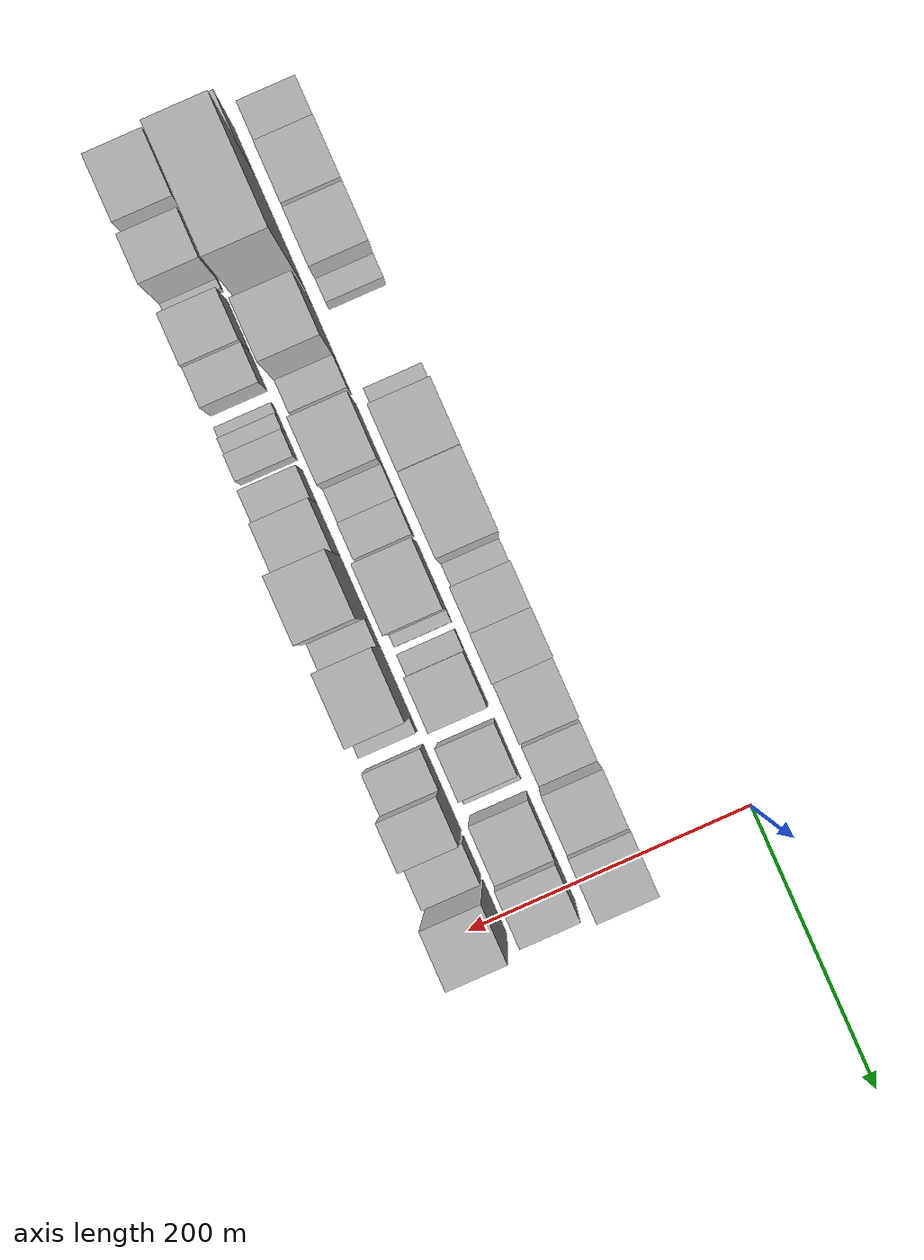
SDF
<sdf version="1.6">
 <world name="default">
  <model name="building_1">
   <static>1</static>
   <pose>100.0000 -520.7160 0 0.000000 0.000000 0.000000</pose>
   <link name="link">
    <pose>0 0 28.50 0 0 0</pose>
    <collision name="collision"><geometry><box><size>40.0000 30.5679 57.0000</size></box></geometry></collision>
    <visual name="visual">
     <cast_shadows>0</cast_shadows>
     <geometry><box><size>40.0000 30.5679 57.0000</size></box></geometry>
     <material>
      <script>
       <uri>model://HANNAS_wall/materials/scripts</uri>
       <uri>model://HANNAS_wall/materials/textures</uri>
       <name>vrc/HANNAS_wall</name>
      </script>
     </material>
    </visual>
   </link>
  </model>
  <model name="building_2">
   <static>1</static>
   <pose>100.0000 -484.4016 0 0.000000 0.000000 0.000000</pose>
   <link name="link">
    <pose>0 0 36.00 0 0 0</pose>
    <collision name="collision"><geometry><box><size>40.0000 42.0609 72.0000</size></box></geometry></collision>
    <visual name="visual">
     <cast_shadows>0</cast_shadows>
     <geometry><box><size>40.0000 42.0609 72.0000</size></box></geometry>
     <material>
      <script>
       <uri>model://HANNAS_wall/materials/scripts</uri>
       <uri>model://HANNAS_wall/materials/textures</uri>
       <name>vrc/HANNAS_wall</name>
      </script>
     </material>
    </visual>
   </link>
  </model>
  <model name="building_3">
   <static>1</static>
   <pose>100.0000 -440.3986 0 0.000000 0.000000 0.000000</pose>
   <link name="link">
    <pose>0 0 37.50 0 0 0</pose>
    <collision name="collision"><geometry><box><size>40.0000 39.9451 75.0000</size></box></geometry></collision>
    <visual name="visual">
     <cast_shadows>0</cast_shadows>
     <geometry><box><size>40.0000 39.9451 75.0000</size></box></geometry>
     <material>
      <script>
       <uri>model://HANNAS_wall/materials/scripts</uri>
       <uri>model://HANNAS_wall/materials/textures</uri>
       <name>vrc/HANNAS_wall</name>
      </script>
     </material>
    </visual>
   </link>
  </model>
  <model name="building_4">
   <static>1</static>
   <pose>100.0000 -412.2053 0 0.000000 0.000000 0.000000</pose>
   <link name="link">
    <pose>0 0 15.00 0 0 0</pose>
    <collision name="collision"><geometry><box><size>40.0000 16.4415 30.0000</size></box></geometry></collision>
    <visual name="visual">
     <cast_shadows>0</cast_shadows>
     <geometry><box><size>40.0000 16.4415 30.0000</size></box></geometry>
     <material>
      <script>
       <uri>model://HANNAS_wall/materials/scripts</uri>
       <uri>model://HANNAS_wall/materials/textures</uri>
       <name>vrc/HANNAS_wall</name>
      </script>
     </material>
    </visual>
   </link>
  </model>
  <model name="building_5">
   <static>1</static>
   <pose>100.0000 -332.3766 0 0.000000 0.000000 0.000000</pose>
   <link name="link">
    <pose>0 0 19.50 0 0 0</pose>
    <collision name="collision"><geometry><box><size>40.0000 22.4053 39.0000</size></box></geometry></collision>
    <visual name="visual">
     <cast_shadows>0</cast_shadows>
     <geometry><box><size>40.0000 22.4053 39.0000</size></box></geometry>
     <material>
      <script>
       <uri>model://HANNAS_wall/materials/scripts</uri>
       <uri>model://HANNAS_wall/materials/textures</uri>
       <name>vrc/HANNAS_wall</name>
      </script>
     </material>
    </visual>
   </link>
  </model>
  <model name="building_6">
   <static>1</static>
   <pose>100.0000 -299.6409 0 0.000000 0.000000 0.000000</pose>
   <link name="link">
    <pose>0 0 70.50 0 0 0</pose>
    <collision name="collision"><geometry><box><size>40.0000 43.0661 141.0000</size></box></geometry></collision>
    <visual name="visual">
     <cast_shadows>0</cast_shadows>
     <geometry><box><size>40.0000 43.0661 141.0000</size></box></geometry>
     <material>
      <script>
       <uri>model://HANNAS_wall/materials/scripts</uri>
       <uri>model://HANNAS_wall/materials/textures</uri>
       <name>vrc/HANNAS_wall</name>
      </script>
     </material>
    </visual>
   </link>
  </model>
  <model name="building_7">
   <static>1</static>
   <pose>100.0000 -250.5822 0 0.000000 0.000000 0.000000</pose>
   <link name="link">
    <pose>0 0 69.00 0 0 0</pose>
    <collision name="collision"><geometry><box><size>40.0000 55.0513 138.0000</size></box></geometry></collision>
    <visual name="visual">
     <cast_shadows>0</cast_shadows>
     <geometry><box><size>40.0000 55.0513 138.0000</size></box></geometry>
     <material>
      <script>
       <uri>model://HANNAS_wall/materials/scripts</uri>
       <uri>model://HANNAS_wall/materials/textures</uri>
       <name>vrc/HANNAS_wall</name>
      </script>
     </material>
    </visual>
   </link>
  </model>
  <model name="building_8">
   <static>1</static>
   <pose>100.0000 -214.4647 0 0.000000 0.000000 0.000000</pose>
   <link name="link">
    <pose>0 0 16.50 0 0 0</pose>
    <collision name="collision"><geometry><box><size>40.0000 17.1836 33.0000</size></box></geometry></collision>
    <visual name="visual">
     <cast_shadows>0</cast_shadows>
     <geometry><box><size>40.0000 17.1836 33.0000</size></box></geometry>
     <material>
      <script>
       <uri>model://HANNAS_wall/materials/scripts</uri>
       <uri>model://HANNAS_wall/materials/textures</uri>
       <name>vrc/HANNAS_wall</name>
      </script>
     </material>
    </visual>
   </link>
  </model>
  <model name="building_9">
   <static>1</static>
   <pose>100.0000 -190.5602 0 0.000000 0.000000 0.000000</pose>
   <link name="link">
    <pose>0 0 48.00 0 0 0</pose>
    <collision name="collision"><geometry><box><size>40.0000 30.6254 96.0000</size></box></geometry></collision>
    <visual name="visual">
     <cast_shadows>0</cast_shadows>
     <geometry><box><size>40.0000 30.6254 96.0000</size></box></geometry>
     <material>
      <script>
       <uri>model://HANNAS_wall/materials/scripts</uri>
       <uri>model://HANNAS_wall/materials/textures</uri>
       <name>vrc/HANNAS_wall</name>
      </script>
     </material>
    </visual>
   </link>
  </model>
  <model name="building_10">
   <static>1</static>
   <pose>100.0000 -158.8489 0 0.000000 0.000000 0.000000</pose>
   <link name="link">
    <pose>0 0 54.00 0 0 0</pose>
    <collision name="collision"><geometry><box><size>40.0000 32.7972 108.0000</size></box></geometry></collision>
    <visual name="visual">
     <cast_shadows>0</cast_shadows>
     <geometry><box><size>40.0000 32.7972 108.0000</size></box></geometry>
     <material>
      <script>
       <uri>model://HANNAS_wall/materials/scripts</uri>
       <uri>model://HANNAS_wall/materials/textures</uri>
       <name>vrc/HANNAS_wall</name>
      </script>
     </material>
    </visual>
   </link>
  </model>
  <model name="building_11">
   <static>1</static>
   <pose>100.0000 -121.7645 0 0.000000 0.000000 0.000000</pose>
   <link name="link">
    <pose>0 0 37.50 0 0 0</pose>
    <collision name="collision"><geometry><box><size>40.0000 41.3716 75.0000</size></box></geometry></collision>
    <visual name="visual">
     <cast_shadows>0</cast_shadows>
     <geometry><box><size>40.0000 41.3716 75.0000</size></box></geometry>
     <material>
      <script>
       <uri>model://HANNAS_wall/materials/scripts</uri>
       <uri>model://HANNAS_wall/materials/textures</uri>
       <name>vrc/HANNAS_wall</name>
      </script>
     </material>
    </visual>
   </link>
  </model>
  <model name="building_12">
   <static>1</static>
   <pose>100.0000 -83.7302 0 0.000000 0.000000 0.000000</pose>
   <link name="link">
    <pose>0 0 22.50 0 0 0</pose>
    <collision name="collision"><geometry><box><size>40.0000 26.6971 45.0000</size></box></geometry></collision>
    <visual name="visual">
     <cast_shadows>0</cast_shadows>
     <geometry><box><size>40.0000 26.6971 45.0000</size></box></geometry>
     <material>
      <script>
       <uri>model://HANNAS_wall/materials/scripts</uri>
       <uri>model://HANNAS_wall/materials/textures</uri>
       <name>vrc/HANNAS_wall</name>
      </script>
     </material>
    </visual>
   </link>
  </model>
  <model name="building_13">
   <static>1</static>
   <pose>100.0000 -51.2228 0 0.000000 0.000000 0.000000</pose>
   <link name="link">
    <pose>0 0 58.50 0 0 0</pose>
    <collision name="collision"><geometry><box><size>40.0000 38.3178 117.0000</size></box></geometry></collision>
    <visual name="visual">
     <cast_shadows>0</cast_shadows>
     <geometry><box><size>40.0000 38.3178 117.0000</size></box></geometry>
     <material>
      <script>
       <uri>model://HANNAS_wall/materials/scripts</uri>
       <uri>model://HANNAS_wall/materials/textures</uri>
       <name>vrc/HANNAS_wall</name>
      </script>
     </material>
    </visual>
   </link>
  </model>
  <model name="building_14">
   <static>1</static>
   <pose>100.0000 -11.2822 0 0.000000 0.000000 0.000000</pose>
   <link name="link">
    <pose>0 0 67.50 0 0 0</pose>
    <collision name="collision"><geometry><box><size>40.0000 41.5633 135.0000</size></box></geometry></collision>
    <visual name="visual">
     <cast_shadows>0</cast_shadows>
     <geometry><box><size>40.0000 41.5633 135.0000</size></box></geometry>
     <material>
      <script>
       <uri>model://HANNAS_wall/materials/scripts</uri>
       <uri>model://HANNAS_wall/materials/textures</uri>
       <name>vrc/HANNAS_wall</name>
      </script>
     </material>
    </visual>
   </link>
  </model>
  <model name="building_31">
   <static>1</static>
   <pose>149.0000 -519.3381 0 0.000000 0.000000 0.000000</pose>
   <link name="link">
    <pose>0 0 49.50 0 0 0</pose>
    <collision name="collision"><geometry><box><size>40.0000 33.3238 99.0000</size></box></geometry></collision>
    <visual name="visual">
     <cast_shadows>0</cast_shadows>
     <geometry><box><size>40.0000 33.3238 99.0000</size></box></geometry>
     <material>
      <script>
       <uri>model://HANNAS_wall/materials/scripts</uri>
       <uri>model://HANNAS_wall/materials/textures</uri>
       <name>vrc/HANNAS_wall</name>
      </script>
     </material>
    </visual>
   </link>
  </model>
  <model name="building_32">
   <static>1</static>
   <pose>149.0000 -461.9551 0 0.000000 0.000000 0.000000</pose>
   <link name="link">
    <pose>0 0 108.00 0 0 0</pose>
    <collision name="collision"><geometry><box><size>40.0000 81.4422 216.0000</size></box></geometry></collision>
    <visual name="visual">
     <cast_shadows>0</cast_shadows>
     <geometry><box><size>40.0000 81.4422 216.0000</size></box></geometry>
     <material>
      <script>
       <uri>model://HANNAS_wall/materials/scripts</uri>
       <uri>model://HANNAS_wall/materials/textures</uri>
       <name>vrc/HANNAS_wall</name>
      </script>
     </material>
    </visual>
   </link>
  </model>
  <model name="building_33">
   <static>1</static>
   <pose>149.0000 -416.3305 0 0.000000 0.000000 0.000000</pose>
   <link name="link">
    <pose>0 0 10.50 0 0 0</pose>
    <collision name="collision"><geometry><box><size>40.0000 9.8070 21.0000</size></box></geometry></collision>
    <visual name="visual">
     <cast_shadows>0</cast_shadows>
     <geometry><box><size>40.0000 9.8070 21.0000</size></box></geometry>
     <material>
      <script>
       <uri>model://HANNAS_wall/materials/scripts</uri>
       <uri>model://HANNAS_wall/materials/textures</uri>
       <name>vrc/HANNAS_wall</name>
      </script>
     </material>
    </visual>
   </link>
  </model>
  <model name="building_34">
   <static>1</static>
   <pose>149.0000 -390.9198 0 0.000000 0.000000 0.000000</pose>
   <link name="link">
    <pose>0 0 66.00 0 0 0</pose>
    <collision name="collision"><geometry><box><size>40.0000 41.0143 132.0000</size></box></geometry></collision>
    <visual name="visual">
     <cast_shadows>0</cast_shadows>
     <geometry><box><size>40.0000 41.0143 132.0000</size></box></geometry>
     <material>
      <script>
       <uri>model://HANNAS_wall/materials/scripts</uri>
       <uri>model://HANNAS_wall/materials/textures</uri>
       <name>vrc/HANNAS_wall</name>
      </script>
     </material>
    </visual>
   </link>
  </model>
  <model name="building_35">
   <static>1</static>
   <pose>149.0000 -359.1286 0 0.000000 0.000000 0.000000</pose>
   <link name="link">
    <pose>0 0 21.00 0 0 0</pose>
    <collision name="collision"><geometry><box><size>40.0000 22.5680 42.0000</size></box></geometry></collision>
    <visual name="visual">
     <cast_shadows>0</cast_shadows>
     <geometry><box><size>40.0000 22.5680 42.0000</size></box></geometry>
     <material>
      <script>
       <uri>model://HANNAS_wall/materials/scripts</uri>
       <uri>model://HANNAS_wall/materials/textures</uri>
       <name>vrc/HANNAS_wall</name>
      </script>
     </material>
    </visual>
   </link>
  </model>
  <model name="building_36">
   <static>1</static>
   <pose>149.0000 -318.2756 0 0.000000 0.000000 0.000000</pose>
   <link name="link">
    <pose>0 0 40.50 0 0 0</pose>
    <collision name="collision"><geometry><box><size>40.0000 45.1380 81.0000</size></box></geometry></collision>
    <visual name="visual">
     <cast_shadows>0</cast_shadows>
     <geometry><box><size>40.0000 45.1380 81.0000</size></box></geometry>
     <material>
      <script>
       <uri>model://HANNAS_wall/materials/scripts</uri>
       <uri>model://HANNAS_wall/materials/textures</uri>
       <name>vrc/HANNAS_wall</name>
      </script>
     </material>
    </visual>
   </link>
  </model>
  <model name="building_37">
   <static>1</static>
   <pose>149.0000 -284.0584 0 0.000000 0.000000 0.000000</pose>
   <link name="link">
    <pose>0 0 19.50 0 0 0</pose>
    <collision name="collision"><geometry><box><size>40.0000 23.2965 39.0000</size></box></geometry></collision>
    <visual name="visual">
     <cast_shadows>0</cast_shadows>
     <geometry><box><size>40.0000 23.2965 39.0000</size></box></geometry>
     <material>
      <script>
       <uri>model://HANNAS_wall/materials/scripts</uri>
       <uri>model://HANNAS_wall/materials/textures</uri>
       <name>vrc/HANNAS_wall</name>
      </script>
     </material>
    </visual>
   </link>
  </model>
  <model name="building_38">
   <static>1</static>
   <pose>149.0000 -259.7899 0 0.000000 0.000000 0.000000</pose>
   <link name="link">
    <pose>0 0 22.50 0 0 0</pose>
    <collision name="collision"><geometry><box><size>40.0000 25.2405 45.0000</size></box></geometry></collision>
    <visual name="visual">
     <cast_shadows>0</cast_shadows>
     <geometry><box><size>40.0000 25.2405 45.0000</size></box></geometry>
     <material>
      <script>
       <uri>model://HANNAS_wall/materials/scripts</uri>
       <uri>model://HANNAS_wall/materials/textures</uri>
       <name>vrc/HANNAS_wall</name>
      </script>
     </material>
    </visual>
   </link>
  </model>
  <model name="building_39">
   <static>1</static>
   <pose>149.0000 -219.3593 0 0.000000 0.000000 0.000000</pose>
   <link name="link">
    <pose>0 0 43.50 0 0 0</pose>
    <collision name="collision"><geometry><box><size>40.0000 47.6207 87.0000</size></box></geometry></collision>
    <visual name="visual">
     <cast_shadows>0</cast_shadows>
     <geometry><box><size>40.0000 47.6207 87.0000</size></box></geometry>
     <material>
      <script>
       <uri>model://HANNAS_wall/materials/scripts</uri>
       <uri>model://HANNAS_wall/materials/textures</uri>
       <name>vrc/HANNAS_wall</name>
      </script>
     </material>
    </visual>
   </link>
  </model>
  <model name="building_40">
   <static>1</static>
   <pose>149.0000 -191.2978 0 0.000000 0.000000 0.000000</pose>
   <link name="link">
    <pose>0 0 9.00 0 0 0</pose>
    <collision name="collision"><geometry><box><size>40.0000 8.5022 18.0000</size></box></geometry></collision>
    <visual name="visual">
     <cast_shadows>0</cast_shadows>
     <geometry><box><size>40.0000 8.5022 18.0000</size></box></geometry>
     <material>
      <script>
       <uri>model://HANNAS_wall/materials/scripts</uri>
       <uri>model://HANNAS_wall/materials/textures</uri>
       <name>vrc/HANNAS_wall</name>
      </script>
     </material>
    </visual>
   </link>
  </model>
  <model name="building_41">
   <static>1</static>
   <pose>149.0000 -174.5456 0 0.000000 0.000000 0.000000</pose>
   <link name="link">
    <pose>0 0 15.00 0 0 0</pose>
    <collision name="collision"><geometry><box><size>40.0000 15.0021 30.0000</size></box></geometry></collision>
    <visual name="visual">
     <cast_shadows>0</cast_shadows>
     <geometry><box><size>40.0000 15.0021 30.0000</size></box></geometry>
     <material>
      <script>
       <uri>model://HANNAS_wall/materials/scripts</uri>
       <uri>model://HANNAS_wall/materials/textures</uri>
       <name>vrc/HANNAS_wall</name>
      </script>
     </material>
    </visual>
   </link>
  </model>
  <model name="building_42">
   <static>1</static>
   <pose>149.0000 -148.1775 0 0.000000 0.000000 0.000000</pose>
   <link name="link">
    <pose>0 0 31.50 0 0 0</pose>
    <collision name="collision"><geometry><box><size>40.0000 37.7341 63.0000</size></box></geometry></collision>
    <visual name="visual">
     <cast_shadows>0</cast_shadows>
     <geometry><box><size>40.0000 37.7341 63.0000</size></box></geometry>
     <material>
      <script>
       <uri>model://HANNAS_wall/materials/scripts</uri>
       <uri>model://HANNAS_wall/materials/textures</uri>
       <name>vrc/HANNAS_wall</name>
      </script>
     </material>
    </visual>
   </link>
  </model>
  <model name="building_43">
   <static>1</static>
   <pose>149.0000 -101.2347 0 0.000000 0.000000 0.000000</pose>
   <link name="link">
    <pose>0 0 33.00 0 0 0</pose>
    <collision name="collision"><geometry><box><size>40.0000 36.1516 66.0000</size></box></geometry></collision>
    <visual name="visual">
     <cast_shadows>0</cast_shadows>
     <geometry><box><size>40.0000 36.1516 66.0000</size></box></geometry>
     <material>
      <script>
       <uri>model://HANNAS_wall/materials/scripts</uri>
       <uri>model://HANNAS_wall/materials/textures</uri>
       <name>vrc/HANNAS_wall</name>
      </script>
     </material>
    </visual>
   </link>
  </model>
  <model name="building_44">
   <static>1</static>
   <pose>149.0000 -80.0527 0 0.000000 0.000000 0.000000</pose>
   <link name="link">
    <pose>0 0 7.50 0 0 0</pose>
    <collision name="collision"><geometry><box><size>40.0000 6.2124 15.0000</size></box></geometry></collision>
    <visual name="visual">
     <cast_shadows>0</cast_shadows>
     <geometry><box><size>40.0000 6.2124 15.0000</size></box></geometry>
     <material>
      <script>
       <uri>model://HANNAS_wall/materials/scripts</uri>
       <uri>model://HANNAS_wall/materials/textures</uri>
       <name>vrc/HANNAS_wall</name>
      </script>
     </material>
    </visual>
   </link>
  </model>
  <model name="building_45">
   <static>1</static>
   <pose>149.0000 -47.9252 0 0.000000 0.000000 0.000000</pose>
   <link name="link">
    <pose>0 0 37.50 0 0 0</pose>
    <collision name="collision"><geometry><box><size>40.0000 40.0428 75.0000</size></box></geometry></collision>
    <visual name="visual">
     <cast_shadows>0</cast_shadows>
     <geometry><box><size>40.0000 40.0428 75.0000</size></box></geometry>
     <material>
      <script>
       <uri>model://HANNAS_wall/materials/scripts</uri>
       <uri>model://HANNAS_wall/materials/textures</uri>
       <name>vrc/HANNAS_wall</name>
      </script>
     </material>
    </visual>
   </link>
  </model>
  <model name="building_46">
   <static>1</static>
   <pose>149.0000 -8.9298 0 0.000000 0.000000 0.000000</pose>
   <link name="link">
    <pose>0 0 49.50 0 0 0</pose>
    <collision name="collision"><geometry><box><size>40.0000 37.9480 99.0000</size></box></geometry></collision>
    <visual name="visual">
     <cast_shadows>0</cast_shadows>
     <geometry><box><size>40.0000 37.9480 99.0000</size></box></geometry>
     <material>
      <script>
       <uri>model://HANNAS_wall/materials/scripts</uri>
       <uri>model://HANNAS_wall/materials/textures</uri>
       <name>vrc/HANNAS_wall</name>
      </script>
     </material>
    </visual>
   </link>
  </model>
  <model name="building_62">
   <static>1</static>
   <pose>198.0000 -513.3660 0 0.000000 0.000000 0.000000</pose>
   <link name="link">
    <pose>0 0 43.50 0 0 0</pose>
    <collision name="collision"><geometry><box><size>40.0000 45.2681 87.0000</size></box></geometry></collision>
    <visual name="visual">
     <cast_shadows>0</cast_shadows>
     <geometry><box><size>40.0000 45.2681 87.0000</size></box></geometry>
     <material>
      <script>
       <uri>model://HANNAS_wall/materials/scripts</uri>
       <uri>model://HANNAS_wall/materials/textures</uri>
       <name>vrc/HANNAS_wall</name>
      </script>
     </material>
    </visual>
   </link>
  </model>
  <model name="building_63">
   <static>1</static>
   <pose>198.0000 -465.2674 0 0.000000 0.000000 0.000000</pose>
   <link name="link">
    <pose>0 0 46.50 0 0 0</pose>
    <collision name="collision"><geometry><box><size>40.0000 32.9291 93.0000</size></box></geometry></collision>
    <visual name="visual">
     <cast_shadows>0</cast_shadows>
     <geometry><box><size>40.0000 32.9291 93.0000</size></box></geometry>
     <material>
      <script>
       <uri>model://HANNAS_wall/materials/scripts</uri>
       <uri>model://HANNAS_wall/materials/textures</uri>
       <name>vrc/HANNAS_wall</name>
      </script>
     </material>
    </visual>
   </link>
  </model>
  <model name="building_64">
   <static>1</static>
   <pose>198.0000 -445.4184 0 0.000000 0.000000 0.000000</pose>
   <link name="link">
    <pose>0 0 7.50 0 0 0</pose>
    <collision name="collision"><geometry><box><size>40.0000 6.7689 15.0000</size></box></geometry></collision>
    <visual name="visual">
     <cast_shadows>0</cast_shadows>
     <geometry><box><size>40.0000 6.7689 15.0000</size></box></geometry>
     <material>
      <script>
       <uri>model://HANNAS_wall/materials/scripts</uri>
       <uri>model://HANNAS_wall/materials/textures</uri>
       <name>vrc/HANNAS_wall</name>
      </script>
     </material>
    </visual>
   </link>
  </model>
  <model name="building_65">
   <static>1</static>
   <pose>198.0000 -417.2115 0 0.000000 0.000000 0.000000</pose>
   <link name="link">
    <pose>0 0 30.00 0 0 0</pose>
    <collision name="collision"><geometry><box><size>40.0000 35.6448 60.0000</size></box></geometry></collision>
    <visual name="visual">
     <cast_shadows>0</cast_shadows>
     <geometry><box><size>40.0000 35.6448 60.0000</size></box></geometry>
     <material>
      <script>
       <uri>model://HANNAS_wall/materials/scripts</uri>
       <uri>model://HANNAS_wall/materials/textures</uri>
       <name>vrc/HANNAS_wall</name>
      </script>
     </material>
    </visual>
   </link>
  </model>
  <model name="building_66">
   <static>1</static>
   <pose>198.0000 -385.6203 0 0.000000 0.000000 0.000000</pose>
   <link name="link">
    <pose>0 0 25.50 0 0 0</pose>
    <collision name="collision"><geometry><box><size>40.0000 27.5375 51.0000</size></box></geometry></collision>
    <visual name="visual">
     <cast_shadows>0</cast_shadows>
     <geometry><box><size>40.0000 27.5375 51.0000</size></box></geometry>
     <material>
      <script>
       <uri>model://HANNAS_wall/materials/scripts</uri>
       <uri>model://HANNAS_wall/materials/textures</uri>
       <name>vrc/HANNAS_wall</name>
      </script>
     </material>
    </visual>
   </link>
  </model>
  <model name="building_67">
   <static>1</static>
   <pose>198.0000 -357.7290 0 0.000000 0.000000 0.000000</pose>
   <link name="link">
    <pose>0 0 9.00 0 0 0</pose>
    <collision name="collision"><geometry><box><size>40.0000 8.2452 18.0000</size></box></geometry></collision>
    <visual name="visual">
     <cast_shadows>0</cast_shadows>
     <geometry><box><size>40.0000 8.2452 18.0000</size></box></geometry>
     <material>
      <script>
       <uri>model://HANNAS_wall/materials/scripts</uri>
       <uri>model://HANNAS_wall/materials/textures</uri>
       <name>vrc/HANNAS_wall</name>
      </script>
     </material>
    </visual>
   </link>
  </model>
  <model name="building_68">
   <static>1</static>
   <pose>198.0000 -347.7753 0 0.000000 0.000000 0.000000</pose>
   <link name="link">
    <pose>0 0 13.50 0 0 0</pose>
    <collision name="collision"><geometry><box><size>40.0000 11.6624 27.0000</size></box></geometry></collision>
    <visual name="visual">
     <cast_shadows>0</cast_shadows>
     <geometry><box><size>40.0000 11.6624 27.0000</size></box></geometry>
     <material>
      <script>
       <uri>model://HANNAS_wall/materials/scripts</uri>
       <uri>model://HANNAS_wall/materials/textures</uri>
       <name>vrc/HANNAS_wall</name>
      </script>
     </material>
    </visual>
   </link>
  </model>
  <model name="building_69">
   <static>1</static>
   <pose>198.0000 -332.5017 0 0.000000 0.000000 0.000000</pose>
   <link name="link">
    <pose>0 0 16.50 0 0 0</pose>
    <collision name="collision"><geometry><box><size>40.0000 18.8849 33.0000</size></box></geometry></collision>
    <visual name="visual">
     <cast_shadows>0</cast_shadows>
     <geometry><box><size>40.0000 18.8849 33.0000</size></box></geometry>
     <material>
      <script>
       <uri>model://HANNAS_wall/materials/scripts</uri>
       <uri>model://HANNAS_wall/materials/textures</uri>
       <name>vrc/HANNAS_wall</name>
      </script>
     </material>
    </visual>
   </link>
  </model>
  <model name="building_70">
   <static>1</static>
   <pose>198.0000 -304.3250 0 0.000000 0.000000 0.000000</pose>
   <link name="link">
    <pose>0 0 22.50 0 0 0</pose>
    <collision name="collision"><geometry><box><size>40.0000 23.4685 45.0000</size></box></geometry></collision>
    <visual name="visual">
     <cast_shadows>0</cast_shadows>
     <geometry><box><size>40.0000 23.4685 45.0000</size></box></geometry>
     <material>
      <script>
       <uri>model://HANNAS_wall/materials/scripts</uri>
       <uri>model://HANNAS_wall/materials/textures</uri>
       <name>vrc/HANNAS_wall</name>
      </script>
     </material>
    </visual>
   </link>
  </model>
  <model name="building_71">
   <static>1</static>
   <pose>198.0000 -274.2314 0 0.000000 0.000000 0.000000</pose>
   <link name="link">
    <pose>0 0 31.50 0 0 0</pose>
    <collision name="collision"><geometry><box><size>40.0000 36.7187 63.0000</size></box></geometry></collision>
    <visual name="visual">
     <cast_shadows>0</cast_shadows>
     <geometry><box><size>40.0000 36.7187 63.0000</size></box></geometry>
     <material>
      <script>
       <uri>model://HANNAS_wall/materials/scripts</uri>
       <uri>model://HANNAS_wall/materials/textures</uri>
       <name>vrc/HANNAS_wall</name>
      </script>
     </material>
    </visual>
   </link>
  </model>
  <model name="building_72">
   <static>1</static>
   <pose>198.0000 -233.3873 0 0.000000 0.000000 0.000000</pose>
   <link name="link">
    <pose>0 0 58.50 0 0 0</pose>
    <collision name="collision"><geometry><box><size>40.0000 44.9694 117.0000</size></box></geometry></collision>
    <visual name="visual">
     <cast_shadows>0</cast_shadows>
     <geometry><box><size>40.0000 44.9694 117.0000</size></box></geometry>
     <material>
      <script>
       <uri>model://HANNAS_wall/materials/scripts</uri>
       <uri>model://HANNAS_wall/materials/textures</uri>
       <name>vrc/HANNAS_wall</name>
      </script>
     </material>
    </visual>
   </link>
  </model>
  <model name="building_73">
   <static>1</static>
   <pose>198.0000 -201.4153 0 0.000000 0.000000 0.000000</pose>
   <link name="link">
    <pose>0 0 18.00 0 0 0</pose>
    <collision name="collision"><geometry><box><size>40.0000 18.9747 36.0000</size></box></geometry></collision>
    <visual name="visual">
     <cast_shadows>0</cast_shadows>
     <geometry><box><size>40.0000 18.9747 36.0000</size></box></geometry>
     <material>
      <script>
       <uri>model://HANNAS_wall/materials/scripts</uri>
       <uri>model://HANNAS_wall/materials/textures</uri>
       <name>vrc/HANNAS_wall</name>
      </script>
     </material>
    </visual>
   </link>
  </model>
  <model name="building_74">
   <static>1</static>
   <pose>198.0000 -166.9050 0 0.000000 0.000000 0.000000</pose>
   <link name="link">
    <pose>0 0 43.50 0 0 0</pose>
    <collision name="collision"><geometry><box><size>40.0000 50.0458 87.0000</size></box></geometry></collision>
    <visual name="visual">
     <cast_shadows>0</cast_shadows>
     <geometry><box><size>40.0000 50.0458 87.0000</size></box></geometry>
     <material>
      <script>
       <uri>model://HANNAS_wall/materials/scripts</uri>
       <uri>model://HANNAS_wall/materials/textures</uri>
       <name>vrc/HANNAS_wall</name>
      </script>
     </material>
    </visual>
   </link>
  </model>
  <model name="building_75">
   <static>1</static>
   <pose>198.0000 -136.6588 0 0.000000 0.000000 0.000000</pose>
   <link name="link">
    <pose>0 0 12.00 0 0 0</pose>
    <collision name="collision"><geometry><box><size>40.0000 10.4468 24.0000</size></box></geometry></collision>
    <visual name="visual">
     <cast_shadows>0</cast_shadows>
     <geometry><box><size>40.0000 10.4468 24.0000</size></box></geometry>
     <material>
      <script>
       <uri>model://HANNAS_wall/materials/scripts</uri>
       <uri>model://HANNAS_wall/materials/textures</uri>
       <name>vrc/HANNAS_wall</name>
      </script>
     </material>
    </visual>
   </link>
  </model>
  <model name="building_76">
   <static>1</static>
   <pose>198.0000 -108.1757 0 0.000000 0.000000 0.000000</pose>
   <link name="link">
    <pose>0 0 25.50 0 0 0</pose>
    <collision name="collision"><geometry><box><size>40.0000 28.5193 51.0000</size></box></geometry></collision>
    <visual name="visual">
     <cast_shadows>0</cast_shadows>
     <geometry><box><size>40.0000 28.5193 51.0000</size></box></geometry>
     <material>
      <script>
       <uri>model://HANNAS_wall/materials/scripts</uri>
       <uri>model://HANNAS_wall/materials/textures</uri>
       <name>vrc/HANNAS_wall</name>
      </script>
     </material>
    </visual>
   </link>
  </model>
  <model name="building_77">
   <static>1</static>
   <pose>198.0000 -77.3770 0 0.000000 0.000000 0.000000</pose>
   <link name="link">
    <pose>0 0 48.00 0 0 0</pose>
    <collision name="collision"><geometry><box><size>40.0000 33.0782 96.0000</size></box></geometry></collision>
    <visual name="visual">
     <cast_shadows>0</cast_shadows>
     <geometry><box><size>40.0000 33.0782 96.0000</size></box></geometry>
     <material>
      <script>
       <uri>model://HANNAS_wall/materials/scripts</uri>
       <uri>model://HANNAS_wall/materials/textures</uri>
       <name>vrc/HANNAS_wall</name>
      </script>
     </material>
    </visual>
   </link>
  </model>
  <model name="building_78">
   <static>1</static>
   <pose>198.0000 -43.7454 0 0.000000 0.000000 0.000000</pose>
   <link name="link">
    <pose>0 0 25.50 0 0 0</pose>
    <collision name="collision"><geometry><box><size>40.0000 28.1849 51.0000</size></box></geometry></collision>
    <visual name="visual">
     <cast_shadows>0</cast_shadows>
     <geometry><box><size>40.0000 28.1849 51.0000</size></box></geometry>
     <material>
      <script>
       <uri>model://HANNAS_wall/materials/scripts</uri>
       <uri>model://HANNAS_wall/materials/textures</uri>
       <name>vrc/HANNAS_wall</name>
      </script>
     </material>
    </visual>
   </link>
  </model>
  <model name="building_79">
   <static>1</static>
   <pose>198.0000 -7.1254 0 0.000000 0.000000 0.000000</pose>
   <link name="link">
    <pose>0 0 60.00 0 0 0</pose>
    <collision name="collision"><geometry><box><size>40.0000 39.0551 120.0000</size></box></geometry></collision>
    <visual name="visual">
     <cast_shadows>0</cast_shadows>
     <geometry><box><size>40.0000 39.0551 120.0000</size></box></geometry>
     <material>
      <script>
       <uri>model://HANNAS_wall/materials/scripts</uri>
       <uri>model://HANNAS_wall/materials/textures</uri>
       <name>vrc/HANNAS_wall</name>
      </script>
     </material>
    </visual>
   </link>
  </model>
 </world>
</sdf>
